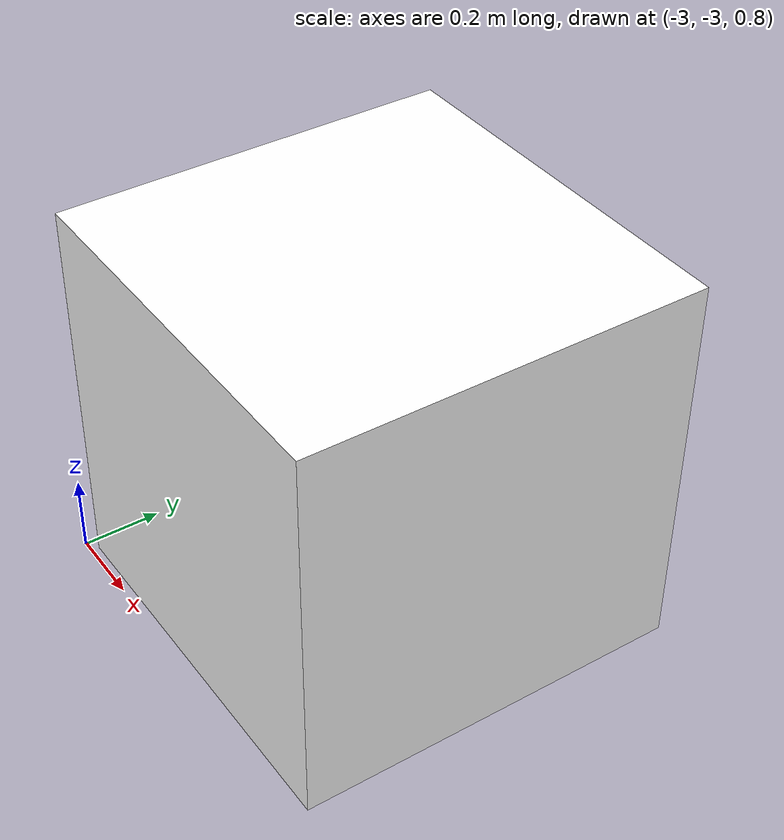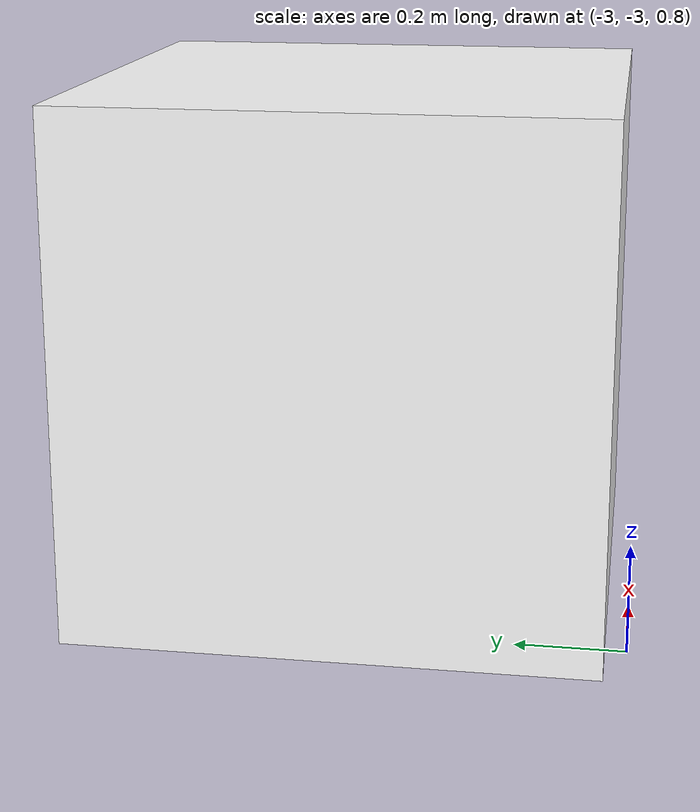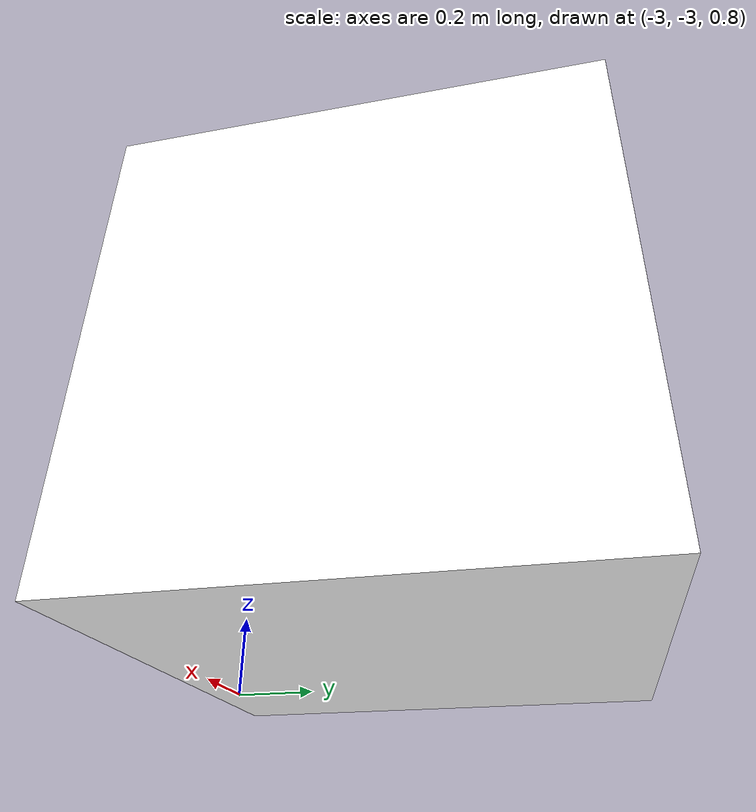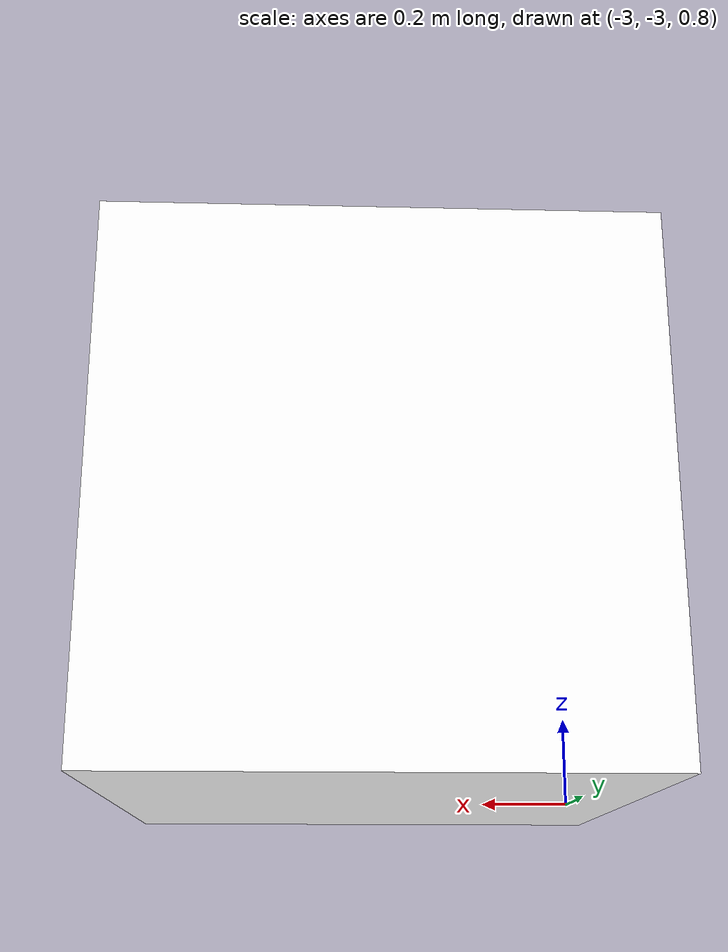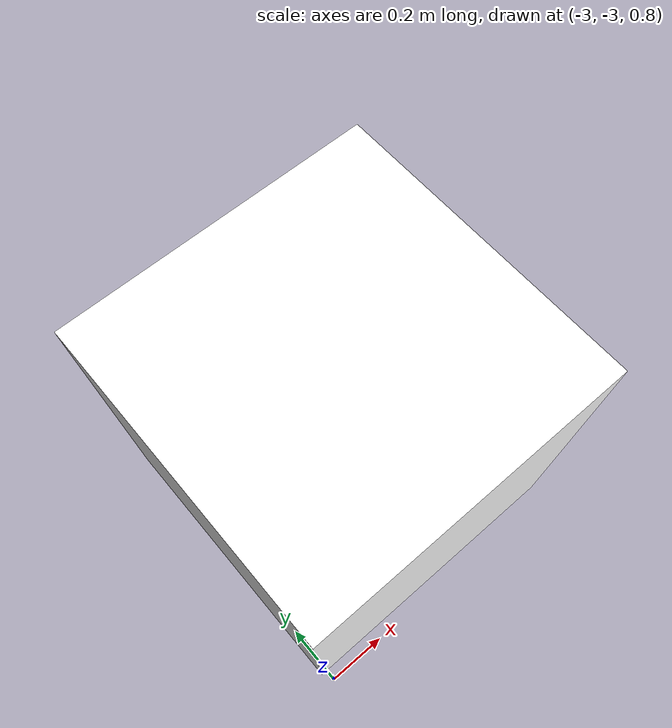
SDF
<?xml version='1.0'?>
<sdf version='1.6'>
  <model name='DetailedCube'>
    <pose frame=''>-2.52 -2.46 0 0 -0 0</pose>
    <link name='DetailedCube_0'>
      <collision name='DetailedCube_0_Collision'>
        <geometry>
          <box>
            <size>1 1 1</size>
          </box>
        </geometry>
        <pose frame=''>0 0 1.25 0 -0 0</pose>
      </collision>
      <visual name='DetailedCube_0_Visual'>
        <pose frame=''>0 0 1.25 0 -0 0</pose>
        <geometry>
          <box>
            <size>1 1 1</size>
          </box>
        </geometry>
        <material>
          <script>
                <uri>model://DetailedCube/scripts</uri>
                <uri>model:///DetailedCube/textures</uri>
                <name>square/Diffuse</name>
          </script>
          <ambient>1 1 1 1</ambient>
        </material>
        <meta>
          <layer>0</layer>
        </meta>
      </visual>
      <pose frame=''>0 0 0 0 -0 0</pose>
    </link>
    <static>1</static>
  </model>
</sdf>
